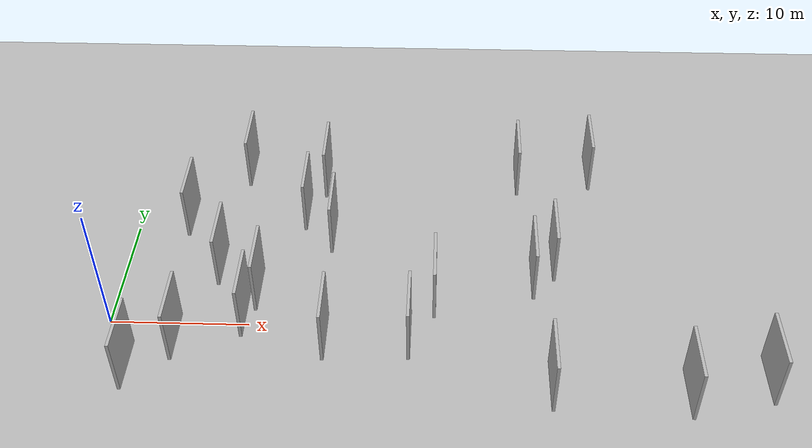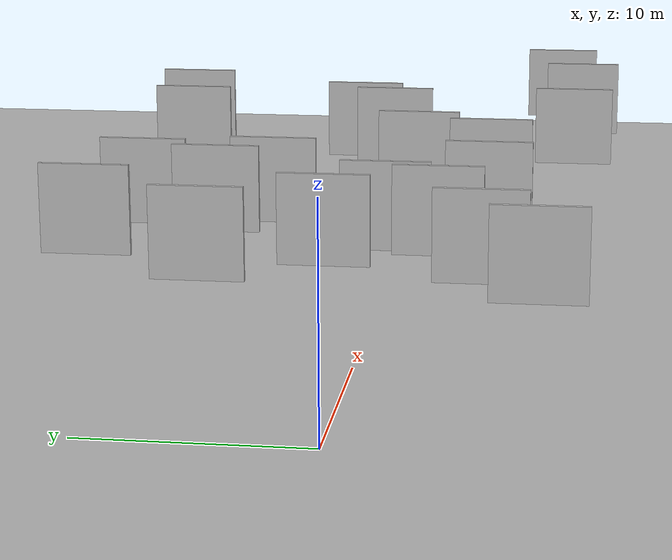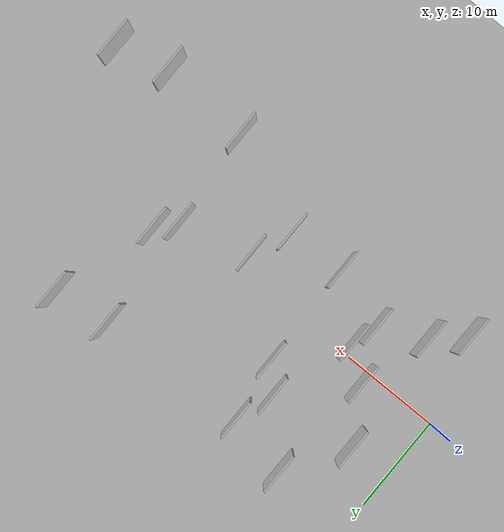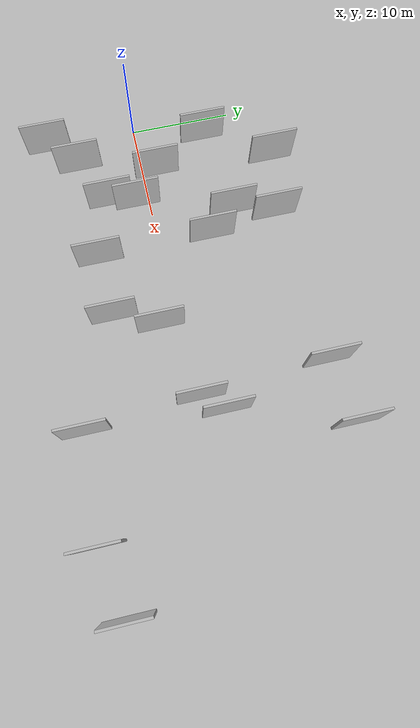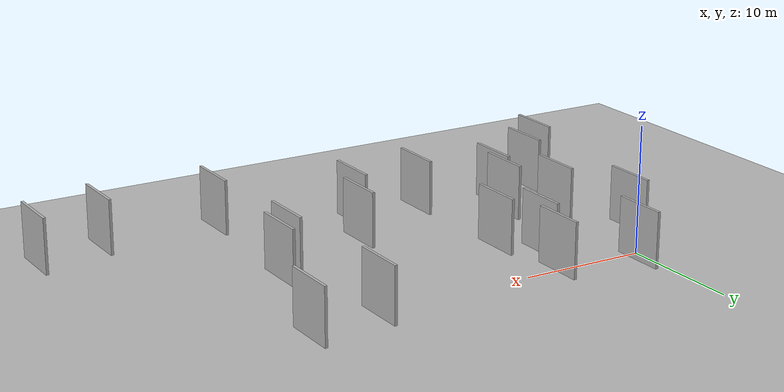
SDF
<?xml version="1.0" encoding="utf-8"?>

<sdf version="1.6">

   <world name="default">

      <gui fullscreen="0">

         <camera name="user_camera">

            <pose>-15 0 4.57585 0 0 0</pose>

            <view_controller>orbit</view_controller>

         </camera>

      </gui>

      <scene>

         <sky>

           <clouds>

             <speed>12</speed>

           </clouds>

         </sky>

         <ambient>0.4 0.4 0.4 1</ambient>

         <background>0.7 0.7 0.7 1</background>

         <shadows>1</shadows>

      </scene>

      <gravity>0 0 -9.8066</gravity>

      <magnetic_field>6e-06 2.3e-05 -4.2e-05</magnetic_field>

      <physics default="0" name="default_physics" type="ode">

         <ode>

            <solver>

               <type>quick</type>

               <iters>10</iters>

               <sor>1.0</sor>

               <use_dynamic_moi_rescaling>0</use_dynamic_moi_rescaling>

            </solver>

            <constraints>

               <cfm>0</cfm>

               <erp>0.2</erp>

               <contact_max_correcting_vel>100</contact_max_correcting_vel>

               <contact_surface_layer>0.001</contact_surface_layer>

            </constraints>

         </ode>

         <max_step_size>0.004</max_step_size>

         <real_time_factor>1</real_time_factor>

         <real_time_update_rate>250</real_time_update_rate>

      </physics>

      <light name="sun" type="directional">

         <cast_shadows>1</cast_shadows>

         <pose>0 0 10 0 0 0</pose>

         <diffuse>0.8 0.8 0.8 1</diffuse>

         <specular>0.2 0.2 0.2 1</specular>

         <attenuation>

            <range>1000</range>

            <constant>0.9</constant>

            <linear>0.01</linear>

            <quadratic>0.001</quadratic>

         </attenuation>

         <direction>-0.5 0.1 -0.9</direction>

      </light>

      <include>

         <name>ground_plane_1</name>

         <uri>model://HANNAS_ground_plane</uri>

         <pose>0 0 0  0 0 0</pose>

      </include>

      <include>

         <name>ground_plane_2</name>

         <uri>model://HANNAS_ground_plane</uri>

         <pose>100 0 0  0 0 0</pose>

      </include>

      <model name="HANNAS_wall_1">

         <static>1</static>

         <pose frame="">11.4371 -1.2571 5.0 0.000000 0.000000 1.570796</pose>

         <link name="link">

            <pose frame="">0 0 2.00 0 0 0</pose>

            <collision name="collision">

               <geometry>

                  <box>

                     <size>4.00 0.2 4.00</size>

                  </box>

               </geometry>

               <max_contacts>10</max_contacts>

               <surface>

                  <contact>

                     <ode/>

                  </contact>

                  <bounce/>

                  <friction>

                     <torsional>

                        <ode/>

                     </torsional>

                     <ode/>

                  </friction>

               </surface>

            </collision>

            <visual name="visual">

               <cast_shadows>0</cast_shadows>

               <geometry>

                  <box>

                     <size>4.00 0.2 4.00</size>

                  </box>

               </geometry>

               <material>

                  <script>

                     <uri>model://HANNAS_wall/materials/scripts</uri>

                     <uri>model://HANNAS_wall/materials/textures</uri>

                     <name>vrc/HANNAS_wall</name>

                  </script>

               </material>

            </visual>

            <self_collide>0</self_collide>

            <enable_wind>0</enable_wind>

            <kinematic>0</kinematic>

         </link>

      </model>

      <model name="HANNAS_wall_2">

         <static>1</static>

         <pose frame="">6.5516 -5.7283 5.0 0.000000 0.000000 1.570796</pose>

         <link name="link">

            <pose frame="">0 0 2.00 0 0 0</pose>

            <collision name="collision">

               <geometry>

                  <box>

                     <size>4.00 0.2 4.00</size>

                  </box>

               </geometry>

               <max_contacts>10</max_contacts>

               <surface>

                  <contact>

                     <ode/>

                  </contact>

                  <bounce/>

                  <friction>

                     <torsional>

                        <ode/>

                     </torsional>

                     <ode/>

                  </friction>

               </surface>

            </collision>

            <visual name="visual">

               <cast_shadows>0</cast_shadows>

               <geometry>

                  <box>

                     <size>4.00 0.2 4.00</size>

                  </box>

               </geometry>

               <material>

                  <script>

                     <uri>model://HANNAS_wall/materials/scripts</uri>

                     <uri>model://HANNAS_wall/materials/textures</uri>

                     <name>vrc/HANNAS_wall</name>

                  </script>

               </material>

            </visual>

            <self_collide>0</self_collide>

            <enable_wind>0</enable_wind>

            <kinematic>0</kinematic>

         </link>

      </model>

      <model name="HANNAS_wall_3">

         <static>1</static>

         <pose frame="">23.3216 -1.6137 5.0 0.000000 0.000000 1.570796</pose>

         <link name="link">

            <pose frame="">0 0 2.00 0 0 0</pose>

            <collision name="collision">

               <geometry>

                  <box>

                     <size>4.00 0.2 4.00</size>

                  </box>

               </geometry>

               <max_contacts>10</max_contacts>

               <surface>

                  <contact>

                     <ode/>

                  </contact>

                  <bounce/>

                  <friction>

                     <torsional>

                        <ode/>

                     </torsional>

                     <ode/>

                  </friction>

               </surface>

            </collision>

            <visual name="visual">

               <cast_shadows>0</cast_shadows>

               <geometry>

                  <box>

                     <size>4.00 0.2 4.00</size>

                  </box>

               </geometry>

               <material>

                  <script>

                     <uri>model://HANNAS_wall/materials/scripts</uri>

                     <uri>model://HANNAS_wall/materials/textures</uri>

                     <name>vrc/HANNAS_wall</name>

                  </script>

               </material>

            </visual>

            <self_collide>0</self_collide>

            <enable_wind>0</enable_wind>

            <kinematic>0</kinematic>

         </link>

      </model>

      <model name="HANNAS_wall_4">

         <static>1</static>

         <pose frame="">3.8793 -8.1965 5.0 0.000000 0.000000 1.570796</pose>

         <link name="link">

            <pose frame="">0 0 2.00 0 0 0</pose>

            <collision name="collision">

               <geometry>

                  <box>

                     <size>4.00 0.2 4.00</size>

                  </box>

               </geometry>

               <max_contacts>10</max_contacts>

               <surface>

                  <contact>

                     <ode/>

                  </contact>

                  <bounce/>

                  <friction>

                     <torsional>

                        <ode/>

                     </torsional>

                     <ode/>

                  </friction>

               </surface>

            </collision>

            <visual name="visual">

               <cast_shadows>0</cast_shadows>

               <geometry>

                  <box>

                     <size>4.00 0.2 4.00</size>

                  </box>

               </geometry>

               <material>

                  <script>

                     <uri>model://HANNAS_wall/materials/scripts</uri>

                     <uri>model://HANNAS_wall/materials/textures</uri>

                     <name>vrc/HANNAS_wall</name>

                  </script>

               </material>

            </visual>

            <self_collide>0</self_collide>

            <enable_wind>0</enable_wind>

            <kinematic>0</kinematic>

         </link>

      </model>

      <model name="HANNAS_wall_5">

         <static>1</static>

         <pose frame="">31.4496 2.0395 5.0 0.000000 0.000000 1.570796</pose>

         <link name="link">

            <pose frame="">0 0 2.00 0 0 0</pose>

            <collision name="collision">

               <geometry>

                  <box>

                     <size>4.00 0.2 4.00</size>

                  </box>

               </geometry>

               <max_contacts>10</max_contacts>

               <surface>

                  <contact>

                     <ode/>

                  </contact>

                  <bounce/>

                  <friction>

                     <torsional>

                        <ode/>

                     </torsional>

                     <ode/>

                  </friction>

               </surface>

            </collision>

            <visual name="visual">

               <cast_shadows>0</cast_shadows>

               <geometry>

                  <box>

                     <size>4.00 0.2 4.00</size>

                  </box>

               </geometry>

               <material>

                  <script>

                     <uri>model://HANNAS_wall/materials/scripts</uri>

                     <uri>model://HANNAS_wall/materials/textures</uri>

                     <name>vrc/HANNAS_wall</name>

                  </script>

               </material>

            </visual>

            <self_collide>0</self_collide>

            <enable_wind>0</enable_wind>

            <kinematic>0</kinematic>

         </link>

      </model>

      <model name="HANNAS_wall_6">

         <static>1</static>

         <pose frame="">10.7914 -3.6174 5.0 0.000000 0.000000 1.570796</pose>

         <link name="link">

            <pose frame="">0 0 2.00 0 0 0</pose>

            <collision name="collision">

               <geometry>

                  <box>

                     <size>4.00 0.2 4.00</size>

                  </box>

               </geometry>

               <max_contacts>10</max_contacts>

               <surface>

                  <contact>

                     <ode/>

                  </contact>

                  <bounce/>

                  <friction>

                     <torsional>

                        <ode/>

                     </torsional>

                     <ode/>

                  </friction>

               </surface>

            </collision>

            <visual name="visual">

               <cast_shadows>0</cast_shadows>

               <geometry>

                  <box>

                     <size>4.00 0.2 4.00</size>

                  </box>

               </geometry>

               <material>

                  <script>

                     <uri>model://HANNAS_wall/materials/scripts</uri>

                     <uri>model://HANNAS_wall/materials/textures</uri>

                     <name>vrc/HANNAS_wall</name>

                  </script>

               </material>

            </visual>

            <self_collide>0</self_collide>

            <enable_wind>0</enable_wind>

            <kinematic>0</kinematic>

         </link>

      </model>

      <model name="HANNAS_wall_7">

         <static>1</static>

         <pose frame="">29.9681 0.2866 5.0 0.000000 0.000000 1.570796</pose>

         <link name="link">

            <pose frame="">0 0 2.00 0 0 0</pose>

            <collision name="collision">

               <geometry>

                  <box>

                     <size>4.00 0.2 4.00</size>

                  </box>

               </geometry>

               <max_contacts>10</max_contacts>

               <surface>

                  <contact>

                     <ode/>

                  </contact>

                  <bounce/>

                  <friction>

                     <torsional>

                        <ode/>

                     </torsional>

                     <ode/>

                  </friction>

               </surface>

            </collision>

            <visual name="visual">

               <cast_shadows>0</cast_shadows>

               <geometry>

                  <box>

                     <size>4.00 0.2 4.00</size>

                  </box>

               </geometry>

               <material>

                  <script>

                     <uri>model://HANNAS_wall/materials/scripts</uri>

                     <uri>model://HANNAS_wall/materials/textures</uri>

                     <name>vrc/HANNAS_wall</name>

                  </script>

               </material>

            </visual>

            <self_collide>0</self_collide>

            <enable_wind>0</enable_wind>

            <kinematic>0</kinematic>

         </link>

      </model>

      <model name="HANNAS_wall_8">

         <static>1</static>

         <pose frame="">39.1924 -9.5454 5.0 0.000000 0.000000 1.570796</pose>

         <link name="link">

            <pose frame="">0 0 2.00 0 0 0</pose>

            <collision name="collision">

               <geometry>

                  <box>

                     <size>4.00 0.2 4.00</size>

                  </box>

               </geometry>

               <max_contacts>10</max_contacts>

               <surface>

                  <contact>

                     <ode/>

                  </contact>

                  <bounce/>

                  <friction>

                     <torsional>

                        <ode/>

                     </torsional>

                     <ode/>

                  </friction>

               </surface>

            </collision>

            <visual name="visual">

               <cast_shadows>0</cast_shadows>

               <geometry>

                  <box>

                     <size>4.00 0.2 4.00</size>

                  </box>

               </geometry>

               <material>

                  <script>

                     <uri>model://HANNAS_wall/materials/scripts</uri>

                     <uri>model://HANNAS_wall/materials/textures</uri>

                     <name>vrc/HANNAS_wall</name>

                  </script>

               </material>

            </visual>

            <self_collide>0</self_collide>

            <enable_wind>0</enable_wind>

            <kinematic>0</kinematic>

         </link>

      </model>

      <model name="HANNAS_wall_9">

         <static>1</static>

         <pose frame="">44.3393 -8.3039 5.0 0.000000 0.000000 1.570796</pose>

         <link name="link">

            <pose frame="">0 0 2.00 0 0 0</pose>

            <collision name="collision">

               <geometry>

                  <box>

                     <size>4.00 0.2 4.00</size>

                  </box>

               </geometry>

               <max_contacts>10</max_contacts>

               <surface>

                  <contact>

                     <ode/>

                  </contact>

                  <bounce/>

                  <friction>

                     <torsional>

                        <ode/>

                     </torsional>

                     <ode/>

                  </friction>

               </surface>

            </collision>

            <visual name="visual">

               <cast_shadows>0</cast_shadows>

               <geometry>

                  <box>

                     <size>4.00 0.2 4.00</size>

                  </box>

               </geometry>

               <material>

                  <script>

                     <uri>model://HANNAS_wall/materials/scripts</uri>

                     <uri>model://HANNAS_wall/materials/textures</uri>

                     <name>vrc/HANNAS_wall</name>

                  </script>

               </material>

            </visual>

            <self_collide>0</self_collide>

            <enable_wind>0</enable_wind>

            <kinematic>0</kinematic>

         </link>

      </model>

      <model name="HANNAS_wall_10">

         <static>1</static>

         <pose frame="">34.6031 11.8181 5.0 0.000000 0.000000 1.570796</pose>

         <link name="link">

            <pose frame="">0 0 2.00 0 0 0</pose>

            <collision name="collision">

               <geometry>

                  <box>

                     <size>4.00 0.2 4.00</size>

                  </box>

               </geometry>

               <max_contacts>10</max_contacts>

               <surface>

                  <contact>

                     <ode/>

                  </contact>

                  <bounce/>

                  <friction>

                     <torsional>

                        <ode/>

                     </torsional>

                     <ode/>

                  </friction>

               </surface>

            </collision>

            <visual name="visual">

               <cast_shadows>0</cast_shadows>

               <geometry>

                  <box>

                     <size>4.00 0.2 4.00</size>

                  </box>

               </geometry>

               <material>

                  <script>

                     <uri>model://HANNAS_wall/materials/scripts</uri>

                     <uri>model://HANNAS_wall/materials/textures</uri>

                     <name>vrc/HANNAS_wall</name>

                  </script>

               </material>

            </visual>

            <self_collide>0</self_collide>

            <enable_wind>0</enable_wind>

            <kinematic>0</kinematic>

         </link>

      </model>

      <model name="HANNAS_wall_11">

         <static>1</static>

         <pose frame="">29.2472 11.0323 5.0 0.000000 0.000000 1.570796</pose>

         <link name="link">

            <pose frame="">0 0 2.00 0 0 0</pose>

            <collision name="collision">

               <geometry>

                  <box>

                     <size>4.00 0.2 4.00</size>

                  </box>

               </geometry>

               <max_contacts>10</max_contacts>

               <surface>

                  <contact>

                     <ode/>

                  </contact>

                  <bounce/>

                  <friction>

                     <torsional>

                        <ode/>

                     </torsional>

                     <ode/>

                  </friction>

               </surface>

            </collision>

            <visual name="visual">

               <cast_shadows>0</cast_shadows>

               <geometry>

                  <box>

                     <size>4.00 0.2 4.00</size>

                  </box>

               </geometry>

               <material>

                  <script>

                     <uri>model://HANNAS_wall/materials/scripts</uri>

                     <uri>model://HANNAS_wall/materials/textures</uri>

                     <name>vrc/HANNAS_wall</name>

                  </script>

               </material>

            </visual>

            <self_collide>0</self_collide>

            <enable_wind>0</enable_wind>

            <kinematic>0</kinematic>

         </link>

      </model>

      <model name="HANNAS_wall_12">

         <static>1</static>

         <pose frame="">15.1242 10.3962 5.0 0.000000 0.000000 1.570796</pose>

         <link name="link">

            <pose frame="">0 0 2.00 0 0 0</pose>

            <collision name="collision">

               <geometry>

                  <box>

                     <size>4.00 0.2 4.00</size>

                  </box>

               </geometry>

               <max_contacts>10</max_contacts>

               <surface>

                  <contact>

                     <ode/>

                  </contact>

                  <bounce/>

                  <friction>

                     <torsional>

                        <ode/>

                     </torsional>

                     <ode/>

                  </friction>

               </surface>

            </collision>

            <visual name="visual">

               <cast_shadows>0</cast_shadows>

               <geometry>

                  <box>

                     <size>4.00 0.2 4.00</size>

                  </box>

               </geometry>

               <material>

                  <script>

                     <uri>model://HANNAS_wall/materials/scripts</uri>

                     <uri>model://HANNAS_wall/materials/textures</uri>

                     <name>vrc/HANNAS_wall</name>

                  </script>

               </material>

            </visual>

            <self_collide>0</self_collide>

            <enable_wind>0</enable_wind>

            <kinematic>0</kinematic>

         </link>

      </model>

      <model name="HANNAS_wall_13">

         <static>1</static>

         <pose frame="">13.9713 6.7724 5.0 0.000000 0.000000 1.570796</pose>

         <link name="link">

            <pose frame="">0 0 2.00 0 0 0</pose>

            <collision name="collision">

               <geometry>

                  <box>

                     <size>4.00 0.2 4.00</size>

                  </box>

               </geometry>

               <max_contacts>10</max_contacts>

               <surface>

                  <contact>

                     <ode/>

                  </contact>

                  <bounce/>

                  <friction>

                     <torsional>

                        <ode/>

                     </torsional>

                     <ode/>

                  </friction>

               </surface>

            </collision>

            <visual name="visual">

               <cast_shadows>0</cast_shadows>

               <geometry>

                  <box>

                     <size>4.00 0.2 4.00</size>

                  </box>

               </geometry>

               <material>

                  <script>

                     <uri>model://HANNAS_wall/materials/scripts</uri>

                     <uri>model://HANNAS_wall/materials/textures</uri>

                     <name>vrc/HANNAS_wall</name>

                  </script>

               </material>

            </visual>

            <self_collide>0</self_collide>

            <enable_wind>0</enable_wind>

            <kinematic>0</kinematic>

         </link>

      </model>

      <model name="HANNAS_wall_14">

         <static>1</static>

         <pose frame="">16.2466 -5.4913 5.0 0.000000 0.000000 1.570796</pose>

         <link name="link">

            <pose frame="">0 0 2.00 0 0 0</pose>

            <collision name="collision">

               <geometry>

                  <box>

                     <size>4.00 0.2 4.00</size>

                  </box>

               </geometry>

               <max_contacts>10</max_contacts>

               <surface>

                  <contact>

                     <ode/>

                  </contact>

                  <bounce/>

                  <friction>

                     <torsional>

                        <ode/>

                     </torsional>

                     <ode/>

                  </friction>

               </surface>

            </collision>

            <visual name="visual">

               <cast_shadows>0</cast_shadows>

               <geometry>

                  <box>

                     <size>4.00 0.2 4.00</size>

                  </box>

               </geometry>

               <material>

                  <script>

                     <uri>model://HANNAS_wall/materials/scripts</uri>

                     <uri>model://HANNAS_wall/materials/textures</uri>

                     <name>vrc/HANNAS_wall</name>

                  </script>

               </material>

            </visual>

            <self_collide>0</self_collide>

            <enable_wind>0</enable_wind>

            <kinematic>0</kinematic>

         </link>

      </model>

      <model name="HANNAS_wall_15">

         <static>1</static>

         <pose frame="">9.3049 11.5995 5.0 0.000000 0.000000 1.570796</pose>

         <link name="link">

            <pose frame="">0 0 2.00 0 0 0</pose>

            <collision name="collision">

               <geometry>

                  <box>

                     <size>4.00 0.2 4.00</size>

                  </box>

               </geometry>

               <max_contacts>10</max_contacts>

               <surface>

                  <contact>

                     <ode/>

                  </contact>

                  <bounce/>

                  <friction>

                     <torsional>

                        <ode/>

                     </torsional>

                     <ode/>

                  </friction>

               </surface>

            </collision>

            <visual name="visual">

               <cast_shadows>0</cast_shadows>

               <geometry>

                  <box>

                     <size>4.00 0.2 4.00</size>

                  </box>

               </geometry>

               <material>

                  <script>

                     <uri>model://HANNAS_wall/materials/scripts</uri>

                     <uri>model://HANNAS_wall/materials/textures</uri>

                     <name>vrc/HANNAS_wall</name>

                  </script>

               </material>

            </visual>

            <self_collide>0</self_collide>

            <enable_wind>0</enable_wind>

            <kinematic>0</kinematic>

         </link>

      </model>

      <model name="HANNAS_wall_16">

         <static>1</static>

         <pose frame="">5.6986 5.9266 5.0 0.000000 0.000000 1.570796</pose>

         <link name="link">

            <pose frame="">0 0 2.00 0 0 0</pose>

            <collision name="collision">

               <geometry>

                  <box>

                     <size>4.00 0.2 4.00</size>

                  </box>

               </geometry>

               <max_contacts>10</max_contacts>

               <surface>

                  <contact>

                     <ode/>

                  </contact>

                  <bounce/>

                  <friction>

                     <torsional>

                        <ode/>

                     </torsional>

                     <ode/>

                  </friction>

               </surface>

            </collision>

            <visual name="visual">

               <cast_shadows>0</cast_shadows>

               <geometry>

                  <box>

                     <size>4.00 0.2 4.00</size>

                  </box>

               </geometry>

               <material>

                  <script>

                     <uri>model://HANNAS_wall/materials/scripts</uri>

                     <uri>model://HANNAS_wall/materials/textures</uri>

                     <name>vrc/HANNAS_wall</name>

                  </script>

               </material>

            </visual>

            <self_collide>0</self_collide>

            <enable_wind>0</enable_wind>

            <kinematic>0</kinematic>

         </link>

      </model>

      <model name="HANNAS_wall_17">

         <static>1</static>

         <pose frame="">16.0326 4.4743 5.0 0.000000 0.000000 1.570796</pose>

         <link name="link">

            <pose frame="">0 0 2.00 0 0 0</pose>

            <collision name="collision">

               <geometry>

                  <box>

                     <size>4.00 0.2 4.00</size>

                  </box>

               </geometry>

               <max_contacts>10</max_contacts>

               <surface>

                  <contact>

                     <ode/>

                  </contact>

                  <bounce/>

                  <friction>

                     <torsional>

                        <ode/>

                     </torsional>

                     <ode/>

                  </friction>

               </surface>

            </collision>

            <visual name="visual">

               <cast_shadows>0</cast_shadows>

               <geometry>

                  <box>

                     <size>4.00 0.2 4.00</size>

                  </box>

               </geometry>

               <material>

                  <script>

                     <uri>model://HANNAS_wall/materials/scripts</uri>

                     <uri>model://HANNAS_wall/materials/textures</uri>

                     <name>vrc/HANNAS_wall</name>

                  </script>

               </material>

            </visual>

            <self_collide>0</self_collide>

            <enable_wind>0</enable_wind>

            <kinematic>0</kinematic>

         </link>

      </model>

      <model name="HANNAS_wall_18">

         <static>1</static>

         <pose frame="">30.7179 -9.1550 5.0 0.000000 0.000000 1.570796</pose>

         <link name="link">

            <pose frame="">0 0 2.00 0 0 0</pose>

            <collision name="collision">

               <geometry>

                  <box>

                     <size>4.00 0.2 4.00</size>

                  </box>

               </geometry>

               <max_contacts>10</max_contacts>

               <surface>

                  <contact>

                     <ode/>

                  </contact>

                  <bounce/>

                  <friction>

                     <torsional>

                        <ode/>

                     </torsional>

                     <ode/>

                  </friction>

               </surface>

            </collision>

            <visual name="visual">

               <cast_shadows>0</cast_shadows>

               <geometry>

                  <box>

                     <size>4.00 0.2 4.00</size>

                  </box>

               </geometry>

               <material>

                  <script>

                     <uri>model://HANNAS_wall/materials/scripts</uri>

                     <uri>model://HANNAS_wall/materials/textures</uri>

                     <name>vrc/HANNAS_wall</name>

                  </script>

               </material>

            </visual>

            <self_collide>0</self_collide>

            <enable_wind>0</enable_wind>

            <kinematic>0</kinematic>

         </link>

      </model>

      <model name="HANNAS_wall_19">

         <static>1</static>

         <pose frame="">21.7320 -5.2744 5.0 0.000000 0.000000 1.570796</pose>

         <link name="link">

            <pose frame="">0 0 2.00 0 0 0</pose>

            <collision name="collision">

               <geometry>

                  <box>

                     <size>4.00 0.2 4.00</size>

                  </box>

               </geometry>

               <max_contacts>10</max_contacts>

               <surface>

                  <contact>

                     <ode/>

                  </contact>

                  <bounce/>

                  <friction>

                     <torsional>

                        <ode/>

                     </torsional>

                     <ode/>

                  </friction>

               </surface>

            </collision>

            <visual name="visual">

               <cast_shadows>0</cast_shadows>

               <geometry>

                  <box>

                     <size>4.00 0.2 4.00</size>

                  </box>

               </geometry>

               <material>

                  <script>

                     <uri>model://HANNAS_wall/materials/scripts</uri>

                     <uri>model://HANNAS_wall/materials/textures</uri>

                     <name>vrc/HANNAS_wall</name>

                  </script>

               </material>

            </visual>

            <self_collide>0</self_collide>

            <enable_wind>0</enable_wind>

            <kinematic>0</kinematic>

         </link>

      </model>

      <model name="HANNAS_wall_20">

         <static>1</static>

         <pose frame="">8.5860 1.0584 5.0 0.000000 0.000000 1.570796</pose>

         <link name="link">

            <pose frame="">0 0 2.00 0 0 0</pose>

            <collision name="collision">

               <geometry>

                  <box>

                     <size>4.00 0.2 4.00</size>

                  </box>

               </geometry>

               <max_contacts>10</max_contacts>

               <surface>

                  <contact>

                     <ode/>

                  </contact>

                  <bounce/>

                  <friction>

                     <torsional>

                        <ode/>

                     </torsional>

                     <ode/>

                  </friction>

               </surface>

            </collision>

            <visual name="visual">

               <cast_shadows>0</cast_shadows>

               <geometry>

                  <box>

                     <size>4.00 0.2 4.00</size>

                  </box>

               </geometry>

               <material>

                  <script>

                     <uri>model://HANNAS_wall/materials/scripts</uri>

                     <uri>model://HANNAS_wall/materials/textures</uri>

                     <name>vrc/HANNAS_wall</name>

                  </script>

               </material>

            </visual>

            <self_collide>0</self_collide>

            <enable_wind>0</enable_wind>

            <kinematic>0</kinematic>

         </link>

      </model>

   </world>

</sdf>

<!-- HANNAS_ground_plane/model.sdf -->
<sdf version="1.4">
<model name="HANNAS_ground_plane">
  <static>true</static>
    <link name="link">
      <collision name="collision">
        <geometry>
          <plane>
            <normal>0 0 1</normal>
            <size>1000 1000</size>
          </plane>
        </geometry>
        <surface>
          <friction>
            <ode>
              <mu>100</mu>
              <mu2>50</mu2>
            </ode>
          </friction>
        </surface>
      </collision>
      <visual name="visual">
        <cast_shadows>false</cast_shadows>
        <geometry>
          <plane>
            <normal>0 0 1</normal>
            <size>1000 1000</size>
          </plane>
        </geometry>
        <material>
          <script>
            <uri>model://HANNAS_ground_plane/materials/scripts/HANNAS_ground_plane.material</uri>
	    <uri>model://HANNAS_ground_plane/materials/textures</uri>
            <name>HANNASGroundPlane/Image</name>
          </script>
        </material>
      </visual>
    </link>
  </model>
</sdf>
